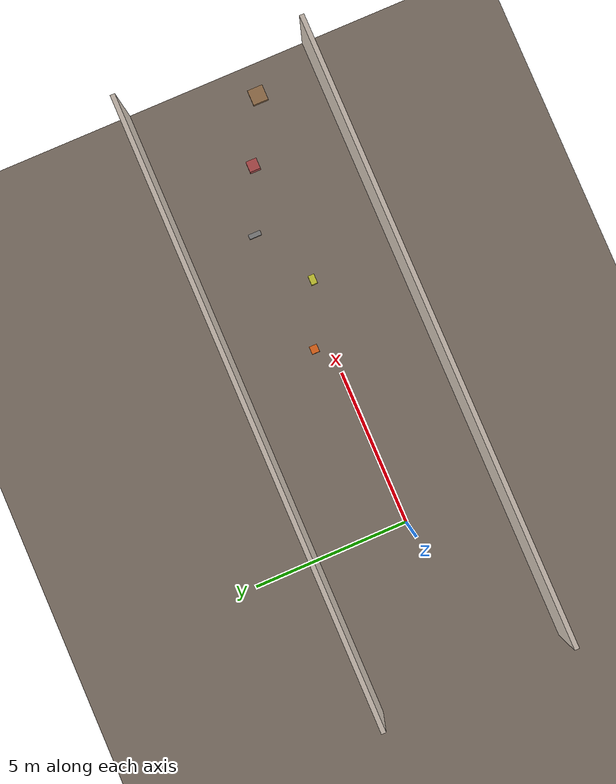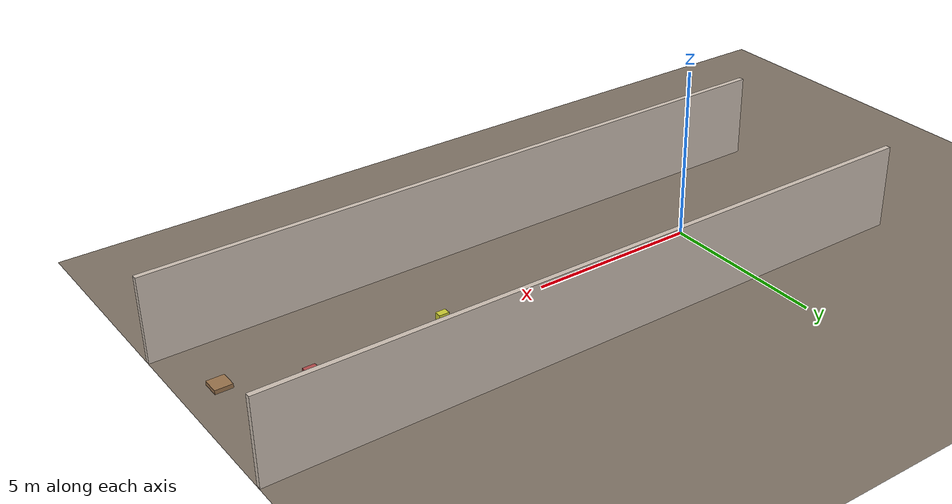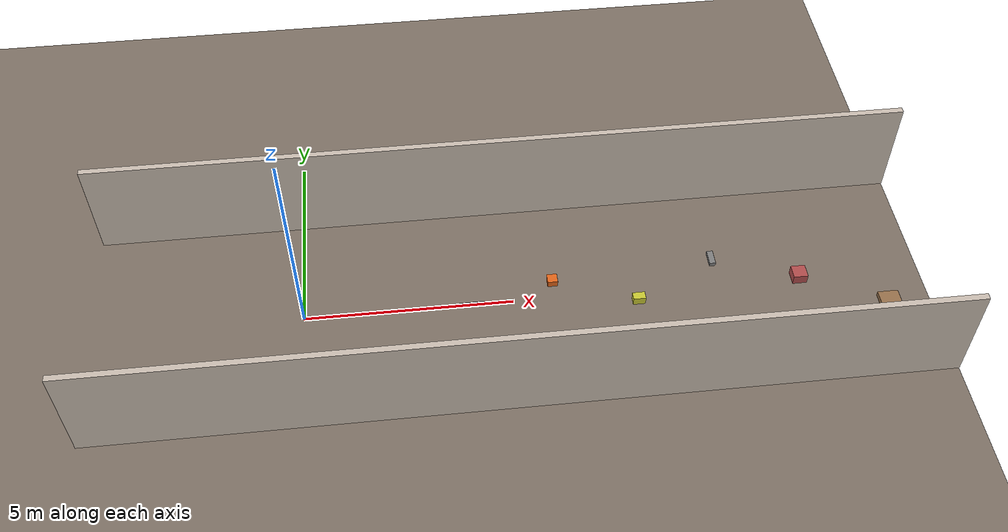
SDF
<?xml version="1.0"?>
<sdf version="1.6">
  <world name="ranger_low_obstacle">
    <scene>
      <ambient>0.4 0.4 0.4 1.0</ambient>
      <background>0.7 0.8 0.9 1.0</background>
      <shadows>true</shadows>
    </scene>

    <include><uri>model://sun</uri></include>
    <include><uri>model://ground_plane</uri></include>

    <model name="lab_floor">
      <static>true</static>
      <pose>0 0 -0.005 0 0 0</pose>
      <link name="floor_link">
        <visual name="floor_visual">
          <geometry><plane><normal>0 0 1</normal><size>30 30</size></plane></geometry>
          <material><ambient>0.5 0.45 0.4 1.0</ambient><diffuse>0.5 0.45 0.4 1.0</diffuse></material>
        </visual>
      </link>
    </model>

    <!-- Walls (open space with scattered low obstacles) -->
    <model name="wall_north"><static>true</static><pose>5 3 1.25 0 0 0</pose>
      <link name="link"><visual name="v"><geometry><box><size>20 0.15 2.5</size></box></geometry><material><ambient>0.8 0.75 0.7 1.0</ambient></material></visual><collision name="c"><geometry><box><size>20 0.15 2.5</size></box></geometry></collision></link></model>
    <model name="wall_south"><static>true</static><pose>5 -3 1.25 0 0 0</pose>
      <link name="link"><visual name="v"><geometry><box><size>20 0.15 2.5</size></box></geometry><material><ambient>0.8 0.75 0.7 1.0</ambient></material></visual><collision name="c"><geometry><box><size>20 0.15 2.5</size></box></geometry></collision></link></model>

    <!-- Dense low obstacles — below MID360S beam height, visible only to D435i depth -->
    <model name="low_cable_bump"><static>true</static><pose>4 0 0.03 0 0 0</pose>
      <link name="link"><visual name="v"><geometry><box><size>0.6 0.08 0.06</size></box></geometry><material><ambient>0.3 0.3 0.3 1.0</ambient></material></visual><collision name="c"><geometry><box><size>0.6 0.08 0.06</size></box></geometry></collision></link></model>

    <model name="low_box_a"><static>true</static><pose>6 0.5 0.08 0 0 0</pose>
      <link name="link"><visual name="v"><geometry><box><size>0.25 0.25 0.16</size></box></geometry><material><ambient>0.9 0.4 0.1 1.0</ambient></material></visual><collision name="c"><geometry><box><size>0.25 0.25 0.16</size></box></geometry></collision></link></model>

    <model name="low_box_b"><static>true</static><pose>8 -0.3 0.1 0 0 0</pose>
      <link name="link"><visual name="v"><geometry><box><size>0.3 0.2 0.2</size></box></geometry><material><ambient>0.8 0.8 0.2 1.0</ambient></material></visual><collision name="c"><geometry><box><size>0.3 0.2 0.2</size></box></geometry></collision></link></model>

    <model name="curb_step"><static>true</static><pose>10 0.8 0.05 0 0 0</pose>
      <link name="link"><visual name="v"><geometry><box><size>0.15 0.4 0.1</size></box></geometry><material><ambient>0.5 0.5 0.5 1.0</ambient></material></visual><collision name="c"><geometry><box><size>0.15 0.4 0.1</size></box></geometry></collision></link></model>

    <model name="low_box_c"><static>true</static><pose>12 0 0.12 0 0 0</pose>
      <link name="link"><visual name="v"><geometry><box><size>0.35 0.35 0.24</size></box></geometry><material><ambient>0.7 0.3 0.3 1.0</ambient></material></visual><collision name="c"><geometry><box><size>0.35 0.35 0.24</size></box></geometry></collision></link></model>

    <model name="low_pallet"><static>true</static><pose>14 -1 0.06 0 0 0</pose>
      <link name="link"><visual name="v"><geometry><box><size>0.5 0.5 0.12</size></box></geometry><material><ambient>0.6 0.45 0.3 1.0</ambient></material></visual><collision name="c"><geometry><box><size>0.5 0.5 0.12</size></box></geometry></collision></link></model>

    <gravity>0 0 -9.8</gravity>
    <physics name="default_physics" type="ode">
      <max_step_size>0.001</max_step_size>
      <real_time_factor>1.0</real_time_factor>
      <real_time_update_rate>1000.0</real_time_update_rate>
    </physics>
  </world>
</sdf>
